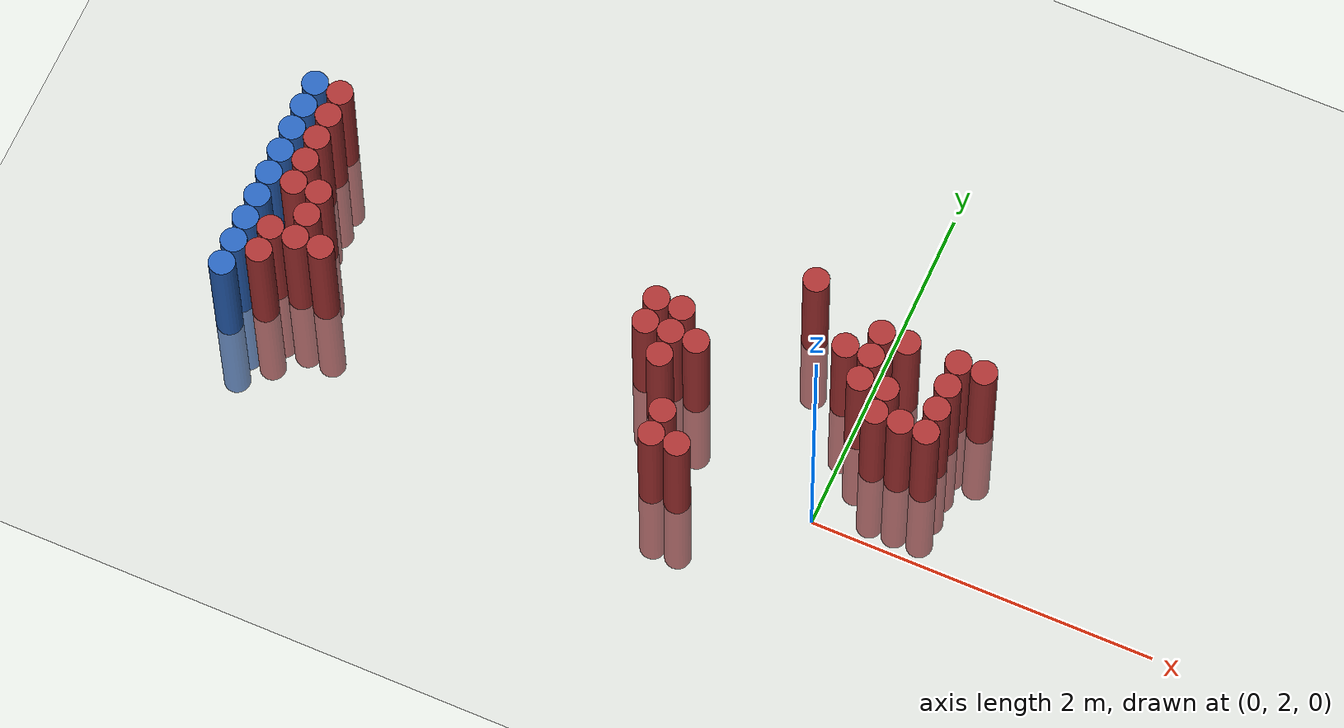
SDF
<sdf version="1.6">
 <world name="default">
  <model name="ground_plane">
   <static>1</static>
   <link name="link">
    <collision name="collision">
     <geometry><plane><normal>0 0 1</normal><size>100 100</size></plane></geometry>
     <surface><friction><ode><mu>100</mu><mu2>50</mu2></ode></friction></surface>
    </collision>
    <visual name="visual">
     <cast_shadows>0</cast_shadows>
     <geometry><plane><normal>0 0 1</normal><size>100 100</size></plane></geometry>
     <material>
      <script><uri>file://media/materials/scripts/gazebo.material</uri><name>Gazebo/Grey</name></script>
     </material>
    </visual>
   </link>
  </model>
  <model name="unit_cylinder_139">
   <static>1</static>
   <pose>-3.425000 1.825000 0.000000 0.000000 0.000000 0.000000</pose>
   <link name="link">
    <inertial>
     <mass>1</mass>
     <inertia><ixx>0.145833</ixx><ixy>0</ixy><ixz>0</ixz><iyy>0.145833</iyy><iyz>0</iyz><izz>0.125</izz></inertia>
    </inertial>
    <collision name="collision">
     <geometry><cylinder><radius>0.075000</radius><length>1.5</length></cylinder></geometry>
    </collision>
    <visual name="visual">
     <geometry><cylinder><radius>0.075000</radius><length>1.5</length></cylinder></geometry>
     <material>
      <ambient>0.152000 0.379000 0.720000 1</ambient>
      <diffuse>0.152000 0.379000 0.720000 1</diffuse>
     </material>
     <material>
      <script><name>Gazebo/Grey</name><uri>file://media/materials/scripts/gazebo.material</uri></script>
     </material>
    </visual>
   </link>
  </model>
  <model name="unit_cylinder_141">
   <static>1</static>
   <pose>-3.425000 1.975000 0.000000 0.000000 0.000000 0.000000</pose>
   <link name="link">
    <inertial>
     <mass>1</mass>
     <inertia><ixx>0.145833</ixx><ixy>0</ixy><ixz>0</ixz><iyy>0.145833</iyy><iyz>0</iyz><izz>0.125</izz></inertia>
    </inertial>
    <collision name="collision">
     <geometry><cylinder><radius>0.075000</radius><length>1.5</length></cylinder></geometry>
    </collision>
    <visual name="visual">
     <geometry><cylinder><radius>0.075000</radius><length>1.5</length></cylinder></geometry>
     <material>
      <ambient>0.152000 0.379000 0.720000 1</ambient>
      <diffuse>0.152000 0.379000 0.720000 1</diffuse>
     </material>
     <material>
      <script><name>Gazebo/Grey</name><uri>file://media/materials/scripts/gazebo.material</uri></script>
     </material>
    </visual>
   </link>
  </model>
  <model name="unit_cylinder_143">
   <static>1</static>
   <pose>-3.425000 2.125000 0.000000 0.000000 0.000000 0.000000</pose>
   <link name="link">
    <inertial>
     <mass>1</mass>
     <inertia><ixx>0.145833</ixx><ixy>0</ixy><ixz>0</ixz><iyy>0.145833</iyy><iyz>0</iyz><izz>0.125</izz></inertia>
    </inertial>
    <collision name="collision">
     <geometry><cylinder><radius>0.075000</radius><length>1.5</length></cylinder></geometry>
    </collision>
    <visual name="visual">
     <geometry><cylinder><radius>0.075000</radius><length>1.5</length></cylinder></geometry>
     <material>
      <ambient>0.152000 0.379000 0.720000 1</ambient>
      <diffuse>0.152000 0.379000 0.720000 1</diffuse>
     </material>
     <material>
      <script><name>Gazebo/Grey</name><uri>file://media/materials/scripts/gazebo.material</uri></script>
     </material>
    </visual>
   </link>
  </model>
  <model name="unit_cylinder_145">
   <static>1</static>
   <pose>-3.425000 2.275000 0.000000 0.000000 0.000000 0.000000</pose>
   <link name="link">
    <inertial>
     <mass>1</mass>
     <inertia><ixx>0.145833</ixx><ixy>0</ixy><ixz>0</ixz><iyy>0.145833</iyy><iyz>0</iyz><izz>0.125</izz></inertia>
    </inertial>
    <collision name="collision">
     <geometry><cylinder><radius>0.075000</radius><length>1.5</length></cylinder></geometry>
    </collision>
    <visual name="visual">
     <geometry><cylinder><radius>0.075000</radius><length>1.5</length></cylinder></geometry>
     <material>
      <ambient>0.152000 0.379000 0.720000 1</ambient>
      <diffuse>0.152000 0.379000 0.720000 1</diffuse>
     </material>
     <material>
      <script><name>Gazebo/Grey</name><uri>file://media/materials/scripts/gazebo.material</uri></script>
     </material>
    </visual>
   </link>
  </model>
  <model name="unit_cylinder_147">
   <static>1</static>
   <pose>-3.425000 2.425000 0.000000 0.000000 0.000000 0.000000</pose>
   <link name="link">
    <inertial>
     <mass>1</mass>
     <inertia><ixx>0.145833</ixx><ixy>0</ixy><ixz>0</ixz><iyy>0.145833</iyy><iyz>0</iyz><izz>0.125</izz></inertia>
    </inertial>
    <collision name="collision">
     <geometry><cylinder><radius>0.075000</radius><length>1.5</length></cylinder></geometry>
    </collision>
    <visual name="visual">
     <geometry><cylinder><radius>0.075000</radius><length>1.5</length></cylinder></geometry>
     <material>
      <ambient>0.152000 0.379000 0.720000 1</ambient>
      <diffuse>0.152000 0.379000 0.720000 1</diffuse>
     </material>
     <material>
      <script><name>Gazebo/Grey</name><uri>file://media/materials/scripts/gazebo.material</uri></script>
     </material>
    </visual>
   </link>
  </model>
  <model name="unit_cylinder_149">
   <static>1</static>
   <pose>-3.425000 2.575000 0.000000 0.000000 0.000000 0.000000</pose>
   <link name="link">
    <inertial>
     <mass>1</mass>
     <inertia><ixx>0.145833</ixx><ixy>0</ixy><ixz>0</ixz><iyy>0.145833</iyy><iyz>0</iyz><izz>0.125</izz></inertia>
    </inertial>
    <collision name="collision">
     <geometry><cylinder><radius>0.075000</radius><length>1.5</length></cylinder></geometry>
    </collision>
    <visual name="visual">
     <geometry><cylinder><radius>0.075000</radius><length>1.5</length></cylinder></geometry>
     <material>
      <ambient>0.152000 0.379000 0.720000 1</ambient>
      <diffuse>0.152000 0.379000 0.720000 1</diffuse>
     </material>
     <material>
      <script><name>Gazebo/Grey</name><uri>file://media/materials/scripts/gazebo.material</uri></script>
     </material>
    </visual>
   </link>
  </model>
  <model name="unit_cylinder_151">
   <static>1</static>
   <pose>-3.425000 2.725000 0.000000 0.000000 0.000000 0.000000</pose>
   <link name="link">
    <inertial>
     <mass>1</mass>
     <inertia><ixx>0.145833</ixx><ixy>0</ixy><ixz>0</ixz><iyy>0.145833</iyy><iyz>0</iyz><izz>0.125</izz></inertia>
    </inertial>
    <collision name="collision">
     <geometry><cylinder><radius>0.075000</radius><length>1.5</length></cylinder></geometry>
    </collision>
    <visual name="visual">
     <geometry><cylinder><radius>0.075000</radius><length>1.5</length></cylinder></geometry>
     <material>
      <ambient>0.152000 0.379000 0.720000 1</ambient>
      <diffuse>0.152000 0.379000 0.720000 1</diffuse>
     </material>
     <material>
      <script><name>Gazebo/Grey</name><uri>file://media/materials/scripts/gazebo.material</uri></script>
     </material>
    </visual>
   </link>
  </model>
  <model name="unit_cylinder_153">
   <static>1</static>
   <pose>-3.425000 2.875000 0.000000 0.000000 0.000000 0.000000</pose>
   <link name="link">
    <inertial>
     <mass>1</mass>
     <inertia><ixx>0.145833</ixx><ixy>0</ixy><ixz>0</ixz><iyy>0.145833</iyy><iyz>0</iyz><izz>0.125</izz></inertia>
    </inertial>
    <collision name="collision">
     <geometry><cylinder><radius>0.075000</radius><length>1.5</length></cylinder></geometry>
    </collision>
    <visual name="visual">
     <geometry><cylinder><radius>0.075000</radius><length>1.5</length></cylinder></geometry>
     <material>
      <ambient>0.152000 0.379000 0.720000 1</ambient>
      <diffuse>0.152000 0.379000 0.720000 1</diffuse>
     </material>
     <material>
      <script><name>Gazebo/Grey</name><uri>file://media/materials/scripts/gazebo.material</uri></script>
     </material>
    </visual>
   </link>
  </model>
  <model name="unit_cylinder_155">
   <static>1</static>
   <pose>-3.425000 3.025000 0.000000 0.000000 0.000000 0.000000</pose>
   <link name="link">
    <inertial>
     <mass>1</mass>
     <inertia><ixx>0.145833</ixx><ixy>0</ixy><ixz>0</ixz><iyy>0.145833</iyy><iyz>0</iyz><izz>0.125</izz></inertia>
    </inertial>
    <collision name="collision">
     <geometry><cylinder><radius>0.075000</radius><length>1.5</length></cylinder></geometry>
    </collision>
    <visual name="visual">
     <geometry><cylinder><radius>0.075000</radius><length>1.5</length></cylinder></geometry>
     <material>
      <ambient>0.152000 0.379000 0.720000 1</ambient>
      <diffuse>0.152000 0.379000 0.720000 1</diffuse>
     </material>
     <material>
      <script><name>Gazebo/Grey</name><uri>file://media/materials/scripts/gazebo.material</uri></script>
     </material>
    </visual>
   </link>
  </model>
  <model name="unit_cylinder_233">
   <static>1</static>
   <pose>-3.425000 1.825000 0.000000 0.000000 0.000000 0.000000</pose>
   <link name="link">
    <inertial>
     <mass>1</mass>
     <inertia><ixx>0.145833</ixx><ixy>0</ixy><ixz>0</ixz><iyy>0.145833</iyy><iyz>0</iyz><izz>0.125</izz></inertia>
    </inertial>
    <collision name="collision">
     <geometry><cylinder><radius>0.075000</radius><length>1.5</length></cylinder></geometry>
    </collision>
    <visual name="visual">
     <geometry><cylinder><radius>0.075000</radius><length>1.5</length></cylinder></geometry>
     <material>
      <ambient>0.152000 0.379000 0.720000 1</ambient>
      <diffuse>0.152000 0.379000 0.720000 1</diffuse>
     </material>
     <material>
      <script><name>Gazebo/Grey</name><uri>file://media/materials/scripts/gazebo.material</uri></script>
     </material>
    </visual>
   </link>
  </model>
  <model name="unit_cylinder_234">
   <static>1</static>
   <pose>-3.425000 1.975000 0.000000 0.000000 0.000000 0.000000</pose>
   <link name="link">
    <inertial>
     <mass>1</mass>
     <inertia><ixx>0.145833</ixx><ixy>0</ixy><ixz>0</ixz><iyy>0.145833</iyy><iyz>0</iyz><izz>0.125</izz></inertia>
    </inertial>
    <collision name="collision">
     <geometry><cylinder><radius>0.075000</radius><length>1.5</length></cylinder></geometry>
    </collision>
    <visual name="visual">
     <geometry><cylinder><radius>0.075000</radius><length>1.5</length></cylinder></geometry>
     <material>
      <ambient>0.152000 0.379000 0.720000 1</ambient>
      <diffuse>0.152000 0.379000 0.720000 1</diffuse>
     </material>
     <material>
      <script><name>Gazebo/Grey</name><uri>file://media/materials/scripts/gazebo.material</uri></script>
     </material>
    </visual>
   </link>
  </model>
  <model name="unit_cylinder_235">
   <static>1</static>
   <pose>-3.425000 2.125000 0.000000 0.000000 0.000000 0.000000</pose>
   <link name="link">
    <inertial>
     <mass>1</mass>
     <inertia><ixx>0.145833</ixx><ixy>0</ixy><ixz>0</ixz><iyy>0.145833</iyy><iyz>0</iyz><izz>0.125</izz></inertia>
    </inertial>
    <collision name="collision">
     <geometry><cylinder><radius>0.075000</radius><length>1.5</length></cylinder></geometry>
    </collision>
    <visual name="visual">
     <geometry><cylinder><radius>0.075000</radius><length>1.5</length></cylinder></geometry>
     <material>
      <ambient>0.152000 0.379000 0.720000 1</ambient>
      <diffuse>0.152000 0.379000 0.720000 1</diffuse>
     </material>
     <material>
      <script><name>Gazebo/Grey</name><uri>file://media/materials/scripts/gazebo.material</uri></script>
     </material>
    </visual>
   </link>
  </model>
  <model name="unit_cylinder_236">
   <static>1</static>
   <pose>-3.425000 2.275000 0.000000 0.000000 0.000000 0.000000</pose>
   <link name="link">
    <inertial>
     <mass>1</mass>
     <inertia><ixx>0.145833</ixx><ixy>0</ixy><ixz>0</ixz><iyy>0.145833</iyy><iyz>0</iyz><izz>0.125</izz></inertia>
    </inertial>
    <collision name="collision">
     <geometry><cylinder><radius>0.075000</radius><length>1.5</length></cylinder></geometry>
    </collision>
    <visual name="visual">
     <geometry><cylinder><radius>0.075000</radius><length>1.5</length></cylinder></geometry>
     <material>
      <ambient>0.152000 0.379000 0.720000 1</ambient>
      <diffuse>0.152000 0.379000 0.720000 1</diffuse>
     </material>
     <material>
      <script><name>Gazebo/Grey</name><uri>file://media/materials/scripts/gazebo.material</uri></script>
     </material>
    </visual>
   </link>
  </model>
  <model name="unit_cylinder_237">
   <static>1</static>
   <pose>-3.425000 2.425000 0.000000 0.000000 0.000000 0.000000</pose>
   <link name="link">
    <inertial>
     <mass>1</mass>
     <inertia><ixx>0.145833</ixx><ixy>0</ixy><ixz>0</ixz><iyy>0.145833</iyy><iyz>0</iyz><izz>0.125</izz></inertia>
    </inertial>
    <collision name="collision">
     <geometry><cylinder><radius>0.075000</radius><length>1.5</length></cylinder></geometry>
    </collision>
    <visual name="visual">
     <geometry><cylinder><radius>0.075000</radius><length>1.5</length></cylinder></geometry>
     <material>
      <ambient>0.152000 0.379000 0.720000 1</ambient>
      <diffuse>0.152000 0.379000 0.720000 1</diffuse>
     </material>
     <material>
      <script><name>Gazebo/Grey</name><uri>file://media/materials/scripts/gazebo.material</uri></script>
     </material>
    </visual>
   </link>
  </model>
  <model name="unit_cylinder_238">
   <static>1</static>
   <pose>-3.425000 2.575000 0.000000 0.000000 0.000000 0.000000</pose>
   <link name="link">
    <inertial>
     <mass>1</mass>
     <inertia><ixx>0.145833</ixx><ixy>0</ixy><ixz>0</ixz><iyy>0.145833</iyy><iyz>0</iyz><izz>0.125</izz></inertia>
    </inertial>
    <collision name="collision">
     <geometry><cylinder><radius>0.075000</radius><length>1.5</length></cylinder></geometry>
    </collision>
    <visual name="visual">
     <geometry><cylinder><radius>0.075000</radius><length>1.5</length></cylinder></geometry>
     <material>
      <ambient>0.152000 0.379000 0.720000 1</ambient>
      <diffuse>0.152000 0.379000 0.720000 1</diffuse>
     </material>
     <material>
      <script><name>Gazebo/Grey</name><uri>file://media/materials/scripts/gazebo.material</uri></script>
     </material>
    </visual>
   </link>
  </model>
  <model name="unit_cylinder_239">
   <static>1</static>
   <pose>-3.425000 2.725000 0.000000 0.000000 0.000000 0.000000</pose>
   <link name="link">
    <inertial>
     <mass>1</mass>
     <inertia><ixx>0.145833</ixx><ixy>0</ixy><ixz>0</ixz><iyy>0.145833</iyy><iyz>0</iyz><izz>0.125</izz></inertia>
    </inertial>
    <collision name="collision">
     <geometry><cylinder><radius>0.075000</radius><length>1.5</length></cylinder></geometry>
    </collision>
    <visual name="visual">
     <geometry><cylinder><radius>0.075000</radius><length>1.5</length></cylinder></geometry>
     <material>
      <ambient>0.152000 0.379000 0.720000 1</ambient>
      <diffuse>0.152000 0.379000 0.720000 1</diffuse>
     </material>
     <material>
      <script><name>Gazebo/Grey</name><uri>file://media/materials/scripts/gazebo.material</uri></script>
     </material>
    </visual>
   </link>
  </model>
  <model name="unit_cylinder_240">
   <static>1</static>
   <pose>-3.425000 2.875000 0.000000 0.000000 0.000000 0.000000</pose>
   <link name="link">
    <inertial>
     <mass>1</mass>
     <inertia><ixx>0.145833</ixx><ixy>0</ixy><ixz>0</ixz><iyy>0.145833</iyy><iyz>0</iyz><izz>0.125</izz></inertia>
    </inertial>
    <collision name="collision">
     <geometry><cylinder><radius>0.075000</radius><length>1.5</length></cylinder></geometry>
    </collision>
    <visual name="visual">
     <geometry><cylinder><radius>0.075000</radius><length>1.5</length></cylinder></geometry>
     <material>
      <ambient>0.152000 0.379000 0.720000 1</ambient>
      <diffuse>0.152000 0.379000 0.720000 1</diffuse>
     </material>
     <material>
      <script><name>Gazebo/Grey</name><uri>file://media/materials/scripts/gazebo.material</uri></script>
     </material>
    </visual>
   </link>
  </model>
  <model name="unit_cylinder_241">
   <static>1</static>
   <pose>-3.425000 3.025000 0.000000 0.000000 0.000000 0.000000</pose>
   <link name="link">
    <inertial>
     <mass>1</mass>
     <inertia><ixx>0.145833</ixx><ixy>0</ixy><ixz>0</ixz><iyy>0.145833</iyy><iyz>0</iyz><izz>0.125</izz></inertia>
    </inertial>
    <collision name="collision">
     <geometry><cylinder><radius>0.075000</radius><length>1.5</length></cylinder></geometry>
    </collision>
    <visual name="visual">
     <geometry><cylinder><radius>0.075000</radius><length>1.5</length></cylinder></geometry>
     <material>
      <ambient>0.152000 0.379000 0.720000 1</ambient>
      <diffuse>0.152000 0.379000 0.720000 1</diffuse>
     </material>
     <material>
      <script><name>Gazebo/Grey</name><uri>file://media/materials/scripts/gazebo.material</uri></script>
     </material>
    </visual>
   </link>
  </model>
  <model name="unit_cylinder_263">
   <static>1</static>
   <pose>-3.275000 1.975000 0.000000 0.000000 0.000000 0.000000</pose>
   <link name="link">
    <inertial>
     <mass>1</mass>
     <inertia><ixx>0.145833</ixx><ixy>0</ixy><ixz>0</ixz><iyy>0.145833</iyy><iyz>0</iyz><izz>0.125</izz></inertia>
    </inertial>
    <collision name="collision">
     <geometry><cylinder><radius>0.075000</radius><length>1.5</length></cylinder></geometry>
    </collision>
    <visual name="visual">
     <geometry><cylinder><radius>0.075000</radius><length>1.5</length></cylinder></geometry>
     <material>
      <ambient>0.648000 0.192000 0.192000 1</ambient>
      <diffuse>0.648000 0.192000 0.192000 1</diffuse>
     </material>
     <material>
      <script><name>Gazebo/Grey</name><uri>file://media/materials/scripts/gazebo.material</uri></script>
     </material>
    </visual>
   </link>
  </model>
  <model name="unit_cylinder_264">
   <static>1</static>
   <pose>-3.275000 2.125000 0.000000 0.000000 0.000000 0.000000</pose>
   <link name="link">
    <inertial>
     <mass>1</mass>
     <inertia><ixx>0.145833</ixx><ixy>0</ixy><ixz>0</ixz><iyy>0.145833</iyy><iyz>0</iyz><izz>0.125</izz></inertia>
    </inertial>
    <collision name="collision">
     <geometry><cylinder><radius>0.075000</radius><length>1.5</length></cylinder></geometry>
    </collision>
    <visual name="visual">
     <geometry><cylinder><radius>0.075000</radius><length>1.5</length></cylinder></geometry>
     <material>
      <ambient>0.648000 0.192000 0.192000 1</ambient>
      <diffuse>0.648000 0.192000 0.192000 1</diffuse>
     </material>
     <material>
      <script><name>Gazebo/Grey</name><uri>file://media/materials/scripts/gazebo.material</uri></script>
     </material>
    </visual>
   </link>
  </model>
  <model name="unit_cylinder_265">
   <static>1</static>
   <pose>-3.275000 2.425000 0.000000 0.000000 0.000000 0.000000</pose>
   <link name="link">
    <inertial>
     <mass>1</mass>
     <inertia><ixx>0.145833</ixx><ixy>0</ixy><ixz>0</ixz><iyy>0.145833</iyy><iyz>0</iyz><izz>0.125</izz></inertia>
    </inertial>
    <collision name="collision">
     <geometry><cylinder><radius>0.075000</radius><length>1.5</length></cylinder></geometry>
    </collision>
    <visual name="visual">
     <geometry><cylinder><radius>0.075000</radius><length>1.5</length></cylinder></geometry>
     <material>
      <ambient>0.648000 0.192000 0.192000 1</ambient>
      <diffuse>0.648000 0.192000 0.192000 1</diffuse>
     </material>
     <material>
      <script><name>Gazebo/Grey</name><uri>file://media/materials/scripts/gazebo.material</uri></script>
     </material>
    </visual>
   </link>
  </model>
  <model name="unit_cylinder_266">
   <static>1</static>
   <pose>-3.275000 2.575000 0.000000 0.000000 0.000000 0.000000</pose>
   <link name="link">
    <inertial>
     <mass>1</mass>
     <inertia><ixx>0.145833</ixx><ixy>0</ixy><ixz>0</ixz><iyy>0.145833</iyy><iyz>0</iyz><izz>0.125</izz></inertia>
    </inertial>
    <collision name="collision">
     <geometry><cylinder><radius>0.075000</radius><length>1.5</length></cylinder></geometry>
    </collision>
    <visual name="visual">
     <geometry><cylinder><radius>0.075000</radius><length>1.5</length></cylinder></geometry>
     <material>
      <ambient>0.648000 0.192000 0.192000 1</ambient>
      <diffuse>0.648000 0.192000 0.192000 1</diffuse>
     </material>
     <material>
      <script><name>Gazebo/Grey</name><uri>file://media/materials/scripts/gazebo.material</uri></script>
     </material>
    </visual>
   </link>
  </model>
  <model name="unit_cylinder_267">
   <static>1</static>
   <pose>-3.275000 2.725000 0.000000 0.000000 0.000000 0.000000</pose>
   <link name="link">
    <inertial>
     <mass>1</mass>
     <inertia><ixx>0.145833</ixx><ixy>0</ixy><ixz>0</ixz><iyy>0.145833</iyy><iyz>0</iyz><izz>0.125</izz></inertia>
    </inertial>
    <collision name="collision">
     <geometry><cylinder><radius>0.075000</radius><length>1.5</length></cylinder></geometry>
    </collision>
    <visual name="visual">
     <geometry><cylinder><radius>0.075000</radius><length>1.5</length></cylinder></geometry>
     <material>
      <ambient>0.648000 0.192000 0.192000 1</ambient>
      <diffuse>0.648000 0.192000 0.192000 1</diffuse>
     </material>
     <material>
      <script><name>Gazebo/Grey</name><uri>file://media/materials/scripts/gazebo.material</uri></script>
     </material>
    </visual>
   </link>
  </model>
  <model name="unit_cylinder_268">
   <static>1</static>
   <pose>-3.275000 2.875000 0.000000 0.000000 0.000000 0.000000</pose>
   <link name="link">
    <inertial>
     <mass>1</mass>
     <inertia><ixx>0.145833</ixx><ixy>0</ixy><ixz>0</ixz><iyy>0.145833</iyy><iyz>0</iyz><izz>0.125</izz></inertia>
    </inertial>
    <collision name="collision">
     <geometry><cylinder><radius>0.075000</radius><length>1.5</length></cylinder></geometry>
    </collision>
    <visual name="visual">
     <geometry><cylinder><radius>0.075000</radius><length>1.5</length></cylinder></geometry>
     <material>
      <ambient>0.648000 0.192000 0.192000 1</ambient>
      <diffuse>0.648000 0.192000 0.192000 1</diffuse>
     </material>
     <material>
      <script><name>Gazebo/Grey</name><uri>file://media/materials/scripts/gazebo.material</uri></script>
     </material>
    </visual>
   </link>
  </model>
  <model name="unit_cylinder_269">
   <static>1</static>
   <pose>-3.275000 3.025000 0.000000 0.000000 0.000000 0.000000</pose>
   <link name="link">
    <inertial>
     <mass>1</mass>
     <inertia><ixx>0.145833</ixx><ixy>0</ixy><ixz>0</ixz><iyy>0.145833</iyy><iyz>0</iyz><izz>0.125</izz></inertia>
    </inertial>
    <collision name="collision">
     <geometry><cylinder><radius>0.075000</radius><length>1.5</length></cylinder></geometry>
    </collision>
    <visual name="visual">
     <geometry><cylinder><radius>0.075000</radius><length>1.5</length></cylinder></geometry>
     <material>
      <ambient>0.648000 0.192000 0.192000 1</ambient>
      <diffuse>0.648000 0.192000 0.192000 1</diffuse>
     </material>
     <material>
      <script><name>Gazebo/Grey</name><uri>file://media/materials/scripts/gazebo.material</uri></script>
     </material>
    </visual>
   </link>
  </model>
  <model name="unit_cylinder_276">
   <static>1</static>
   <pose>-3.125000 2.125000 0.000000 0.000000 0.000000 0.000000</pose>
   <link name="link">
    <inertial>
     <mass>1</mass>
     <inertia><ixx>0.145833</ixx><ixy>0</ixy><ixz>0</ixz><iyy>0.145833</iyy><iyz>0</iyz><izz>0.125</izz></inertia>
    </inertial>
    <collision name="collision">
     <geometry><cylinder><radius>0.075000</radius><length>1.5</length></cylinder></geometry>
    </collision>
    <visual name="visual">
     <geometry><cylinder><radius>0.075000</radius><length>1.5</length></cylinder></geometry>
     <material>
      <ambient>0.648000 0.192000 0.192000 1</ambient>
      <diffuse>0.648000 0.192000 0.192000 1</diffuse>
     </material>
     <material>
      <script><name>Gazebo/Grey</name><uri>file://media/materials/scripts/gazebo.material</uri></script>
     </material>
    </visual>
   </link>
  </model>
  <model name="unit_cylinder_277">
   <static>1</static>
   <pose>-3.125000 2.275000 0.000000 0.000000 0.000000 0.000000</pose>
   <link name="link">
    <inertial>
     <mass>1</mass>
     <inertia><ixx>0.145833</ixx><ixy>0</ixy><ixz>0</ixz><iyy>0.145833</iyy><iyz>0</iyz><izz>0.125</izz></inertia>
    </inertial>
    <collision name="collision">
     <geometry><cylinder><radius>0.075000</radius><length>1.5</length></cylinder></geometry>
    </collision>
    <visual name="visual">
     <geometry><cylinder><radius>0.075000</radius><length>1.5</length></cylinder></geometry>
     <material>
      <ambient>0.648000 0.192000 0.192000 1</ambient>
      <diffuse>0.648000 0.192000 0.192000 1</diffuse>
     </material>
     <material>
      <script><name>Gazebo/Grey</name><uri>file://media/materials/scripts/gazebo.material</uri></script>
     </material>
    </visual>
   </link>
  </model>
  <model name="unit_cylinder_278">
   <static>1</static>
   <pose>-3.125000 2.425000 0.000000 0.000000 0.000000 0.000000</pose>
   <link name="link">
    <inertial>
     <mass>1</mass>
     <inertia><ixx>0.145833</ixx><ixy>0</ixy><ixz>0</ixz><iyy>0.145833</iyy><iyz>0</iyz><izz>0.125</izz></inertia>
    </inertial>
    <collision name="collision">
     <geometry><cylinder><radius>0.075000</radius><length>1.5</length></cylinder></geometry>
    </collision>
    <visual name="visual">
     <geometry><cylinder><radius>0.075000</radius><length>1.5</length></cylinder></geometry>
     <material>
      <ambient>0.648000 0.192000 0.192000 1</ambient>
      <diffuse>0.648000 0.192000 0.192000 1</diffuse>
     </material>
     <material>
      <script><name>Gazebo/Grey</name><uri>file://media/materials/scripts/gazebo.material</uri></script>
     </material>
    </visual>
   </link>
  </model>
  <model name="unit_cylinder_282">
   <static>1</static>
   <pose>-2.975000 2.125000 0.000000 0.000000 0.000000 0.000000</pose>
   <link name="link">
    <inertial>
     <mass>1</mass>
     <inertia><ixx>0.145833</ixx><ixy>0</ixy><ixz>0</ixz><iyy>0.145833</iyy><iyz>0</iyz><izz>0.125</izz></inertia>
    </inertial>
    <collision name="collision">
     <geometry><cylinder><radius>0.075000</radius><length>1.5</length></cylinder></geometry>
    </collision>
    <visual name="visual">
     <geometry><cylinder><radius>0.075000</radius><length>1.5</length></cylinder></geometry>
     <material>
      <ambient>0.648000 0.192000 0.192000 1</ambient>
      <diffuse>0.648000 0.192000 0.192000 1</diffuse>
     </material>
     <material>
      <script><name>Gazebo/Grey</name><uri>file://media/materials/scripts/gazebo.material</uri></script>
     </material>
    </visual>
   </link>
  </model>
  <model name="unit_cylinder_333">
   <static>1</static>
   <pose>-1.175000 2.425000 0.000000 0.000000 0.000000 0.000000</pose>
   <link name="link">
    <inertial>
     <mass>1</mass>
     <inertia><ixx>0.145833</ixx><ixy>0</ixy><ixz>0</ixz><iyy>0.145833</iyy><iyz>0</iyz><izz>0.125</izz></inertia>
    </inertial>
    <collision name="collision">
     <geometry><cylinder><radius>0.075000</radius><length>1.5</length></cylinder></geometry>
    </collision>
    <visual name="visual">
     <geometry><cylinder><radius>0.075000</radius><length>1.5</length></cylinder></geometry>
     <material>
      <ambient>0.648000 0.192000 0.192000 1</ambient>
      <diffuse>0.648000 0.192000 0.192000 1</diffuse>
     </material>
     <material>
      <script><name>Gazebo/Grey</name><uri>file://media/materials/scripts/gazebo.material</uri></script>
     </material>
    </visual>
   </link>
  </model>
  <model name="unit_cylinder_334">
   <static>1</static>
   <pose>-1.175000 2.575000 0.000000 0.000000 0.000000 0.000000</pose>
   <link name="link">
    <inertial>
     <mass>1</mass>
     <inertia><ixx>0.145833</ixx><ixy>0</ixy><ixz>0</ixz><iyy>0.145833</iyy><iyz>0</iyz><izz>0.125</izz></inertia>
    </inertial>
    <collision name="collision">
     <geometry><cylinder><radius>0.075000</radius><length>1.5</length></cylinder></geometry>
    </collision>
    <visual name="visual">
     <geometry><cylinder><radius>0.075000</radius><length>1.5</length></cylinder></geometry>
     <material>
      <ambient>0.648000 0.192000 0.192000 1</ambient>
      <diffuse>0.648000 0.192000 0.192000 1</diffuse>
     </material>
     <material>
      <script><name>Gazebo/Grey</name><uri>file://media/materials/scripts/gazebo.material</uri></script>
     </material>
    </visual>
   </link>
  </model>
  <model name="unit_cylinder_336">
   <static>1</static>
   <pose>-1.025000 2.275000 0.000000 0.000000 0.000000 0.000000</pose>
   <link name="link">
    <inertial>
     <mass>1</mass>
     <inertia><ixx>0.145833</ixx><ixy>0</ixy><ixz>0</ixz><iyy>0.145833</iyy><iyz>0</iyz><izz>0.125</izz></inertia>
    </inertial>
    <collision name="collision">
     <geometry><cylinder><radius>0.075000</radius><length>1.5</length></cylinder></geometry>
    </collision>
    <visual name="visual">
     <geometry><cylinder><radius>0.075000</radius><length>1.5</length></cylinder></geometry>
     <material>
      <ambient>0.648000 0.192000 0.192000 1</ambient>
      <diffuse>0.648000 0.192000 0.192000 1</diffuse>
     </material>
     <material>
      <script><name>Gazebo/Grey</name><uri>file://media/materials/scripts/gazebo.material</uri></script>
     </material>
    </visual>
   </link>
  </model>
  <model name="unit_cylinder_337">
   <static>1</static>
   <pose>-1.025000 2.425000 0.000000 0.000000 0.000000 0.000000</pose>
   <link name="link">
    <inertial>
     <mass>1</mass>
     <inertia><ixx>0.145833</ixx><ixy>0</ixy><ixz>0</ixz><iyy>0.145833</iyy><iyz>0</iyz><izz>0.125</izz></inertia>
    </inertial>
    <collision name="collision">
     <geometry><cylinder><radius>0.075000</radius><length>1.5</length></cylinder></geometry>
    </collision>
    <visual name="visual">
     <geometry><cylinder><radius>0.075000</radius><length>1.5</length></cylinder></geometry>
     <material>
      <ambient>0.648000 0.192000 0.192000 1</ambient>
      <diffuse>0.648000 0.192000 0.192000 1</diffuse>
     </material>
     <material>
      <script><name>Gazebo/Grey</name><uri>file://media/materials/scripts/gazebo.material</uri></script>
     </material>
    </visual>
   </link>
  </model>
  <model name="unit_cylinder_338">
   <static>1</static>
   <pose>-1.025000 2.575000 0.000000 0.000000 0.000000 0.000000</pose>
   <link name="link">
    <inertial>
     <mass>1</mass>
     <inertia><ixx>0.145833</ixx><ixy>0</ixy><ixz>0</ixz><iyy>0.145833</iyy><iyz>0</iyz><izz>0.125</izz></inertia>
    </inertial>
    <collision name="collision">
     <geometry><cylinder><radius>0.075000</radius><length>1.5</length></cylinder></geometry>
    </collision>
    <visual name="visual">
     <geometry><cylinder><radius>0.075000</radius><length>1.5</length></cylinder></geometry>
     <material>
      <ambient>0.648000 0.192000 0.192000 1</ambient>
      <diffuse>0.648000 0.192000 0.192000 1</diffuse>
     </material>
     <material>
      <script><name>Gazebo/Grey</name><uri>file://media/materials/scripts/gazebo.material</uri></script>
     </material>
    </visual>
   </link>
  </model>
  <model name="unit_cylinder_341">
   <static>1</static>
   <pose>-0.875000 1.825000 0.000000 0.000000 0.000000 0.000000</pose>
   <link name="link">
    <inertial>
     <mass>1</mass>
     <inertia><ixx>0.145833</ixx><ixy>0</ixy><ixz>0</ixz><iyy>0.145833</iyy><iyz>0</iyz><izz>0.125</izz></inertia>
    </inertial>
    <collision name="collision">
     <geometry><cylinder><radius>0.075000</radius><length>1.5</length></cylinder></geometry>
    </collision>
    <visual name="visual">
     <geometry><cylinder><radius>0.075000</radius><length>1.5</length></cylinder></geometry>
     <material>
      <ambient>0.648000 0.192000 0.192000 1</ambient>
      <diffuse>0.648000 0.192000 0.192000 1</diffuse>
     </material>
     <material>
      <script><name>Gazebo/Grey</name><uri>file://media/materials/scripts/gazebo.material</uri></script>
     </material>
    </visual>
   </link>
  </model>
  <model name="unit_cylinder_342">
   <static>1</static>
   <pose>-0.875000 1.975000 0.000000 0.000000 0.000000 0.000000</pose>
   <link name="link">
    <inertial>
     <mass>1</mass>
     <inertia><ixx>0.145833</ixx><ixy>0</ixy><ixz>0</ixz><iyy>0.145833</iyy><iyz>0</iyz><izz>0.125</izz></inertia>
    </inertial>
    <collision name="collision">
     <geometry><cylinder><radius>0.075000</radius><length>1.5</length></cylinder></geometry>
    </collision>
    <visual name="visual">
     <geometry><cylinder><radius>0.075000</radius><length>1.5</length></cylinder></geometry>
     <material>
      <ambient>0.648000 0.192000 0.192000 1</ambient>
      <diffuse>0.648000 0.192000 0.192000 1</diffuse>
     </material>
     <material>
      <script><name>Gazebo/Grey</name><uri>file://media/materials/scripts/gazebo.material</uri></script>
     </material>
    </visual>
   </link>
  </model>
  <model name="unit_cylinder_343">
   <static>1</static>
   <pose>-0.875000 2.425000 0.000000 0.000000 0.000000 0.000000</pose>
   <link name="link">
    <inertial>
     <mass>1</mass>
     <inertia><ixx>0.145833</ixx><ixy>0</ixy><ixz>0</ixz><iyy>0.145833</iyy><iyz>0</iyz><izz>0.125</izz></inertia>
    </inertial>
    <collision name="collision">
     <geometry><cylinder><radius>0.075000</radius><length>1.5</length></cylinder></geometry>
    </collision>
    <visual name="visual">
     <geometry><cylinder><radius>0.075000</radius><length>1.5</length></cylinder></geometry>
     <material>
      <ambient>0.648000 0.192000 0.192000 1</ambient>
      <diffuse>0.648000 0.192000 0.192000 1</diffuse>
     </material>
     <material>
      <script><name>Gazebo/Grey</name><uri>file://media/materials/scripts/gazebo.material</uri></script>
     </material>
    </visual>
   </link>
  </model>
  <model name="unit_cylinder_347">
   <static>1</static>
   <pose>-0.725000 1.825000 0.000000 0.000000 0.000000 0.000000</pose>
   <link name="link">
    <inertial>
     <mass>1</mass>
     <inertia><ixx>0.145833</ixx><ixy>0</ixy><ixz>0</ixz><iyy>0.145833</iyy><iyz>0</iyz><izz>0.125</izz></inertia>
    </inertial>
    <collision name="collision">
     <geometry><cylinder><radius>0.075000</radius><length>1.5</length></cylinder></geometry>
    </collision>
    <visual name="visual">
     <geometry><cylinder><radius>0.075000</radius><length>1.5</length></cylinder></geometry>
     <material>
      <ambient>0.648000 0.192000 0.192000 1</ambient>
      <diffuse>0.648000 0.192000 0.192000 1</diffuse>
     </material>
     <material>
      <script><name>Gazebo/Grey</name><uri>file://media/materials/scripts/gazebo.material</uri></script>
     </material>
    </visual>
   </link>
  </model>
  <model name="unit_cylinder_350">
   <static>1</static>
   <pose>-0.425000 3.025000 0.000000 0.000000 0.000000 0.000000</pose>
   <link name="link">
    <inertial>
     <mass>1</mass>
     <inertia><ixx>0.145833</ixx><ixy>0</ixy><ixz>0</ixz><iyy>0.145833</iyy><iyz>0</iyz><izz>0.125</izz></inertia>
    </inertial>
    <collision name="collision">
     <geometry><cylinder><radius>0.075000</radius><length>1.5</length></cylinder></geometry>
    </collision>
    <visual name="visual">
     <geometry><cylinder><radius>0.075000</radius><length>1.5</length></cylinder></geometry>
     <material>
      <ambient>0.648000 0.192000 0.192000 1</ambient>
      <diffuse>0.648000 0.192000 0.192000 1</diffuse>
     </material>
     <material>
      <script><name>Gazebo/Grey</name><uri>file://media/materials/scripts/gazebo.material</uri></script>
     </material>
    </visual>
   </link>
  </model>
  <model name="unit_cylinder_358">
   <static>1</static>
   <pose>-0.125000 2.725000 0.000000 0.000000 0.000000 0.000000</pose>
   <link name="link">
    <inertial>
     <mass>1</mass>
     <inertia><ixx>0.145833</ixx><ixy>0</ixy><ixz>0</ixz><iyy>0.145833</iyy><iyz>0</iyz><izz>0.125</izz></inertia>
    </inertial>
    <collision name="collision">
     <geometry><cylinder><radius>0.075000</radius><length>1.5</length></cylinder></geometry>
    </collision>
    <visual name="visual">
     <geometry><cylinder><radius>0.075000</radius><length>1.5</length></cylinder></geometry>
     <material>
      <ambient>0.648000 0.192000 0.192000 1</ambient>
      <diffuse>0.648000 0.192000 0.192000 1</diffuse>
     </material>
     <material>
      <script><name>Gazebo/Grey</name><uri>file://media/materials/scripts/gazebo.material</uri></script>
     </material>
    </visual>
   </link>
  </model>
  <model name="unit_cylinder_363">
   <static>1</static>
   <pose>0.025000 2.575000 0.000000 0.000000 0.000000 0.000000</pose>
   <link name="link">
    <inertial>
     <mass>1</mass>
     <inertia><ixx>0.145833</ixx><ixy>0</ixy><ixz>0</ixz><iyy>0.145833</iyy><iyz>0</iyz><izz>0.125</izz></inertia>
    </inertial>
    <collision name="collision">
     <geometry><cylinder><radius>0.075000</radius><length>1.5</length></cylinder></geometry>
    </collision>
    <visual name="visual">
     <geometry><cylinder><radius>0.075000</radius><length>1.5</length></cylinder></geometry>
     <material>
      <ambient>0.648000 0.192000 0.192000 1</ambient>
      <diffuse>0.648000 0.192000 0.192000 1</diffuse>
     </material>
     <material>
      <script><name>Gazebo/Grey</name><uri>file://media/materials/scripts/gazebo.material</uri></script>
     </material>
    </visual>
   </link>
  </model>
  <model name="unit_cylinder_364">
   <static>1</static>
   <pose>0.025000 2.725000 0.000000 0.000000 0.000000 0.000000</pose>
   <link name="link">
    <inertial>
     <mass>1</mass>
     <inertia><ixx>0.145833</ixx><ixy>0</ixy><ixz>0</ixz><iyy>0.145833</iyy><iyz>0</iyz><izz>0.125</izz></inertia>
    </inertial>
    <collision name="collision">
     <geometry><cylinder><radius>0.075000</radius><length>1.5</length></cylinder></geometry>
    </collision>
    <visual name="visual">
     <geometry><cylinder><radius>0.075000</radius><length>1.5</length></cylinder></geometry>
     <material>
      <ambient>0.648000 0.192000 0.192000 1</ambient>
      <diffuse>0.648000 0.192000 0.192000 1</diffuse>
     </material>
     <material>
      <script><name>Gazebo/Grey</name><uri>file://media/materials/scripts/gazebo.material</uri></script>
     </material>
    </visual>
   </link>
  </model>
  <model name="unit_cylinder_365">
   <static>1</static>
   <pose>0.025000 2.875000 0.000000 0.000000 0.000000 0.000000</pose>
   <link name="link">
    <inertial>
     <mass>1</mass>
     <inertia><ixx>0.145833</ixx><ixy>0</ixy><ixz>0</ixz><iyy>0.145833</iyy><iyz>0</iyz><izz>0.125</izz></inertia>
    </inertial>
    <collision name="collision">
     <geometry><cylinder><radius>0.075000</radius><length>1.5</length></cylinder></geometry>
    </collision>
    <visual name="visual">
     <geometry><cylinder><radius>0.075000</radius><length>1.5</length></cylinder></geometry>
     <material>
      <ambient>0.648000 0.192000 0.192000 1</ambient>
      <diffuse>0.648000 0.192000 0.192000 1</diffuse>
     </material>
     <material>
      <script><name>Gazebo/Grey</name><uri>file://media/materials/scripts/gazebo.material</uri></script>
     </material>
    </visual>
   </link>
  </model>
  <model name="unit_cylinder_374">
   <static>1</static>
   <pose>0.175000 2.425000 0.000000 0.000000 0.000000 0.000000</pose>
   <link name="link">
    <inertial>
     <mass>1</mass>
     <inertia><ixx>0.145833</ixx><ixy>0</ixy><ixz>0</ixz><iyy>0.145833</iyy><iyz>0</iyz><izz>0.125</izz></inertia>
    </inertial>
    <collision name="collision">
     <geometry><cylinder><radius>0.075000</radius><length>1.5</length></cylinder></geometry>
    </collision>
    <visual name="visual">
     <geometry><cylinder><radius>0.075000</radius><length>1.5</length></cylinder></geometry>
     <material>
      <ambient>0.648000 0.192000 0.192000 1</ambient>
      <diffuse>0.648000 0.192000 0.192000 1</diffuse>
     </material>
     <material>
      <script><name>Gazebo/Grey</name><uri>file://media/materials/scripts/gazebo.material</uri></script>
     </material>
    </visual>
   </link>
  </model>
  <model name="unit_cylinder_375">
   <static>1</static>
   <pose>0.175000 2.575000 0.000000 0.000000 0.000000 0.000000</pose>
   <link name="link">
    <inertial>
     <mass>1</mass>
     <inertia><ixx>0.145833</ixx><ixy>0</ixy><ixz>0</ixz><iyy>0.145833</iyy><iyz>0</iyz><izz>0.125</izz></inertia>
    </inertial>
    <collision name="collision">
     <geometry><cylinder><radius>0.075000</radius><length>1.5</length></cylinder></geometry>
    </collision>
    <visual name="visual">
     <geometry><cylinder><radius>0.075000</radius><length>1.5</length></cylinder></geometry>
     <material>
      <ambient>0.648000 0.192000 0.192000 1</ambient>
      <diffuse>0.648000 0.192000 0.192000 1</diffuse>
     </material>
     <material>
      <script><name>Gazebo/Grey</name><uri>file://media/materials/scripts/gazebo.material</uri></script>
     </material>
    </visual>
   </link>
  </model>
  <model name="unit_cylinder_376">
   <static>1</static>
   <pose>0.175000 2.875000 0.000000 0.000000 0.000000 0.000000</pose>
   <link name="link">
    <inertial>
     <mass>1</mass>
     <inertia><ixx>0.145833</ixx><ixy>0</ixy><ixz>0</ixz><iyy>0.145833</iyy><iyz>0</iyz><izz>0.125</izz></inertia>
    </inertial>
    <collision name="collision">
     <geometry><cylinder><radius>0.075000</radius><length>1.5</length></cylinder></geometry>
    </collision>
    <visual name="visual">
     <geometry><cylinder><radius>0.075000</radius><length>1.5</length></cylinder></geometry>
     <material>
      <ambient>0.648000 0.192000 0.192000 1</ambient>
      <diffuse>0.648000 0.192000 0.192000 1</diffuse>
     </material>
     <material>
      <script><name>Gazebo/Grey</name><uri>file://media/materials/scripts/gazebo.material</uri></script>
     </material>
    </visual>
   </link>
  </model>
  <model name="unit_cylinder_385">
   <static>1</static>
   <pose>0.325000 2.425000 0.000000 0.000000 0.000000 0.000000</pose>
   <link name="link">
    <inertial>
     <mass>1</mass>
     <inertia><ixx>0.145833</ixx><ixy>0</ixy><ixz>0</ixz><iyy>0.145833</iyy><iyz>0</iyz><izz>0.125</izz></inertia>
    </inertial>
    <collision name="collision">
     <geometry><cylinder><radius>0.075000</radius><length>1.5</length></cylinder></geometry>
    </collision>
    <visual name="visual">
     <geometry><cylinder><radius>0.075000</radius><length>1.5</length></cylinder></geometry>
     <material>
      <ambient>0.648000 0.192000 0.192000 1</ambient>
      <diffuse>0.648000 0.192000 0.192000 1</diffuse>
     </material>
     <material>
      <script><name>Gazebo/Grey</name><uri>file://media/materials/scripts/gazebo.material</uri></script>
     </material>
    </visual>
   </link>
  </model>
  <model name="unit_cylinder_390">
   <static>1</static>
   <pose>0.475000 2.425000 0.000000 0.000000 0.000000 0.000000</pose>
   <link name="link">
    <inertial>
     <mass>1</mass>
     <inertia><ixx>0.145833</ixx><ixy>0</ixy><ixz>0</ixz><iyy>0.145833</iyy><iyz>0</iyz><izz>0.125</izz></inertia>
    </inertial>
    <collision name="collision">
     <geometry><cylinder><radius>0.075000</radius><length>1.5</length></cylinder></geometry>
    </collision>
    <visual name="visual">
     <geometry><cylinder><radius>0.075000</radius><length>1.5</length></cylinder></geometry>
     <material>
      <ambient>0.648000 0.192000 0.192000 1</ambient>
      <diffuse>0.648000 0.192000 0.192000 1</diffuse>
     </material>
     <material>
      <script><name>Gazebo/Grey</name><uri>file://media/materials/scripts/gazebo.material</uri></script>
     </material>
    </visual>
   </link>
  </model>
  <model name="unit_cylinder_391">
   <static>1</static>
   <pose>0.475000 2.575000 0.000000 0.000000 0.000000 0.000000</pose>
   <link name="link">
    <inertial>
     <mass>1</mass>
     <inertia><ixx>0.145833</ixx><ixy>0</ixy><ixz>0</ixz><iyy>0.145833</iyy><iyz>0</iyz><izz>0.125</izz></inertia>
    </inertial>
    <collision name="collision">
     <geometry><cylinder><radius>0.075000</radius><length>1.5</length></cylinder></geometry>
    </collision>
    <visual name="visual">
     <geometry><cylinder><radius>0.075000</radius><length>1.5</length></cylinder></geometry>
     <material>
      <ambient>0.648000 0.192000 0.192000 1</ambient>
      <diffuse>0.648000 0.192000 0.192000 1</diffuse>
     </material>
     <material>
      <script><name>Gazebo/Grey</name><uri>file://media/materials/scripts/gazebo.material</uri></script>
     </material>
    </visual>
   </link>
  </model>
  <model name="unit_cylinder_392">
   <static>1</static>
   <pose>0.475000 2.725000 0.000000 0.000000 0.000000 0.000000</pose>
   <link name="link">
    <inertial>
     <mass>1</mass>
     <inertia><ixx>0.145833</ixx><ixy>0</ixy><ixz>0</ixz><iyy>0.145833</iyy><iyz>0</iyz><izz>0.125</izz></inertia>
    </inertial>
    <collision name="collision">
     <geometry><cylinder><radius>0.075000</radius><length>1.5</length></cylinder></geometry>
    </collision>
    <visual name="visual">
     <geometry><cylinder><radius>0.075000</radius><length>1.5</length></cylinder></geometry>
     <material>
      <ambient>0.648000 0.192000 0.192000 1</ambient>
      <diffuse>0.648000 0.192000 0.192000 1</diffuse>
     </material>
     <material>
      <script><name>Gazebo/Grey</name><uri>file://media/materials/scripts/gazebo.material</uri></script>
     </material>
    </visual>
   </link>
  </model>
  <model name="unit_cylinder_393">
   <static>1</static>
   <pose>0.475000 2.875000 0.000000 0.000000 0.000000 0.000000</pose>
   <link name="link">
    <inertial>
     <mass>1</mass>
     <inertia><ixx>0.145833</ixx><ixy>0</ixy><ixz>0</ixz><iyy>0.145833</iyy><iyz>0</iyz><izz>0.125</izz></inertia>
    </inertial>
    <collision name="collision">
     <geometry><cylinder><radius>0.075000</radius><length>1.5</length></cylinder></geometry>
    </collision>
    <visual name="visual">
     <geometry><cylinder><radius>0.075000</radius><length>1.5</length></cylinder></geometry>
     <material>
      <ambient>0.648000 0.192000 0.192000 1</ambient>
      <diffuse>0.648000 0.192000 0.192000 1</diffuse>
     </material>
     <material>
      <script><name>Gazebo/Grey</name><uri>file://media/materials/scripts/gazebo.material</uri></script>
     </material>
    </visual>
   </link>
  </model>
  <model name="unit_cylinder_400">
   <static>1</static>
   <pose>0.625000 2.875000 0.000000 0.000000 0.000000 0.000000</pose>
   <link name="link">
    <inertial>
     <mass>1</mass>
     <inertia><ixx>0.145833</ixx><ixy>0</ixy><ixz>0</ixz><iyy>0.145833</iyy><iyz>0</iyz><izz>0.125</izz></inertia>
    </inertial>
    <collision name="collision">
     <geometry><cylinder><radius>0.075000</radius><length>1.5</length></cylinder></geometry>
    </collision>
    <visual name="visual">
     <geometry><cylinder><radius>0.075000</radius><length>1.5</length></cylinder></geometry>
     <material>
      <ambient>0.648000 0.192000 0.192000 1</ambient>
      <diffuse>0.648000 0.192000 0.192000 1</diffuse>
     </material>
     <material>
      <script><name>Gazebo/Grey</name><uri>file://media/materials/scripts/gazebo.material</uri></script>
     </material>
    </visual>
   </link>
  </model>
 </world>
</sdf>
